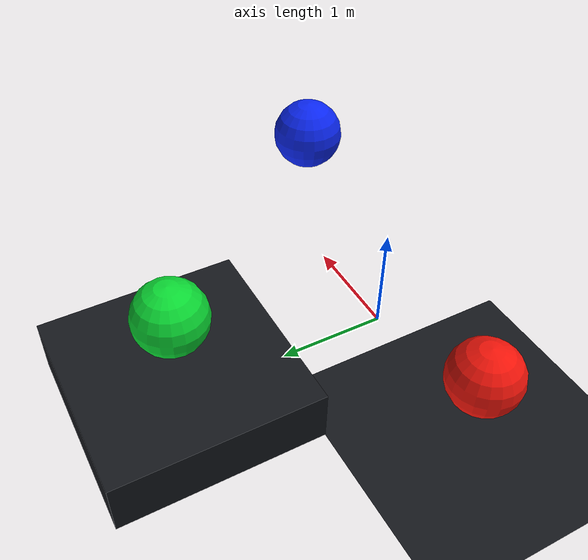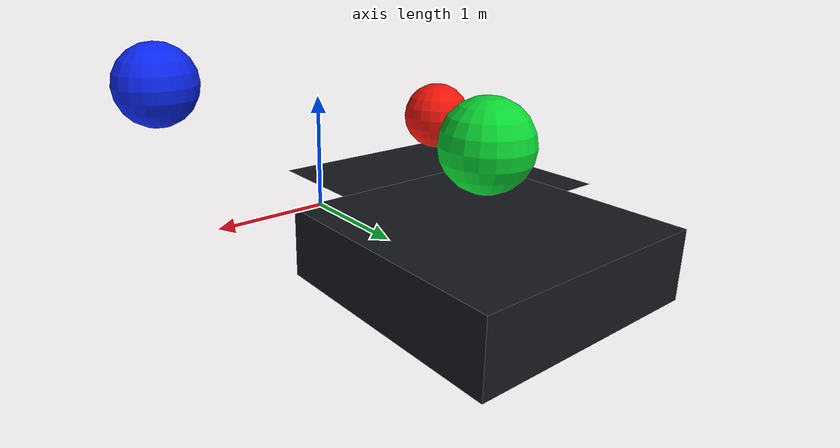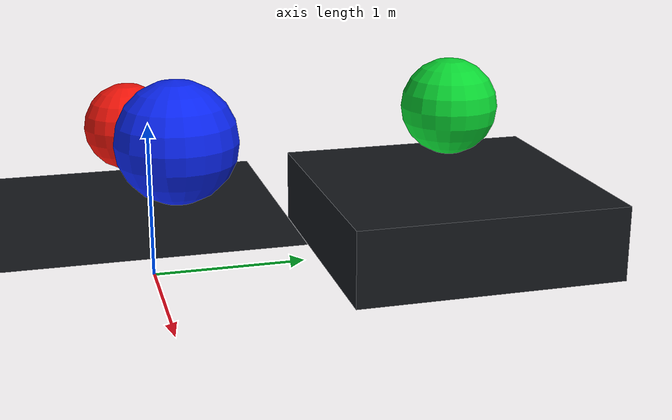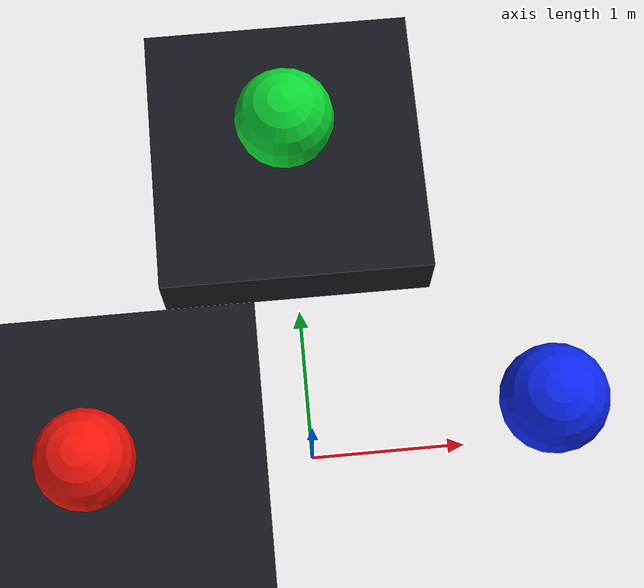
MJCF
<mujoco model="multiple reflections">
  <visual>
    <headlight ambient="0.35 0.35 0.35" diffuse="0.8 0.8 0.8"/>
  </visual>
  <asset>
    <material name="mirror" rgba="0.08 0.09 0.11 1" reflectance="0.85"/>
    <material name="red" rgba="0.95 0.08 0.04 1"/>
    <material name="blue" rgba="0.04 0.15 0.95 1"/>
    <material name="green" rgba="0.04 0.85 0.20 1"/>
  </asset>
  <worldbody>
    <geom name="lower mirror" type="plane" pos="-1.4 0 0" size="1.1 1.1 0.05"
          material="mirror"/>
    <geom name="upper mirror" type="plane" pos="1.4 0 0.6" size="1.1 1.1 0.05"
          material="mirror"/>
    <geom name="red sphere" type="sphere" pos="-1.4 0 0.65" size="0.32" material="red"/>
    <geom name="blue sphere" type="sphere" pos="1.4 0 1.25" size="0.32" material="blue"/>
    <geom name="box mirror" type="box" pos="0 2 0.25" size="0.9 0.9 0.25"
          material="mirror"/>
    <geom name="green sphere" type="sphere" pos="0 2 1.0" size="0.32" material="green"/>
  </worldbody>
</mujoco>
